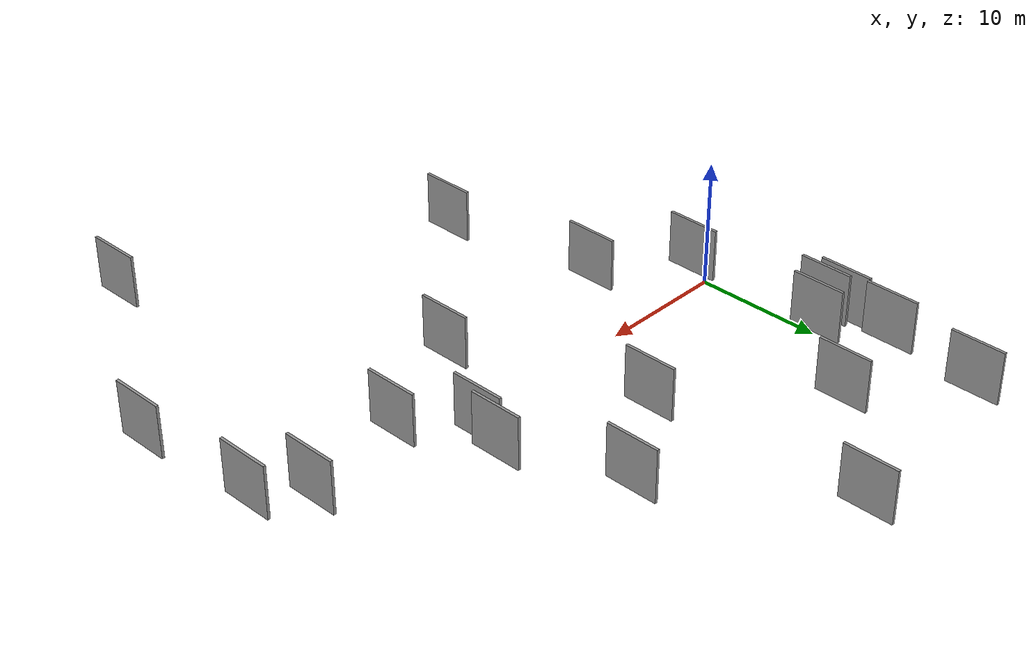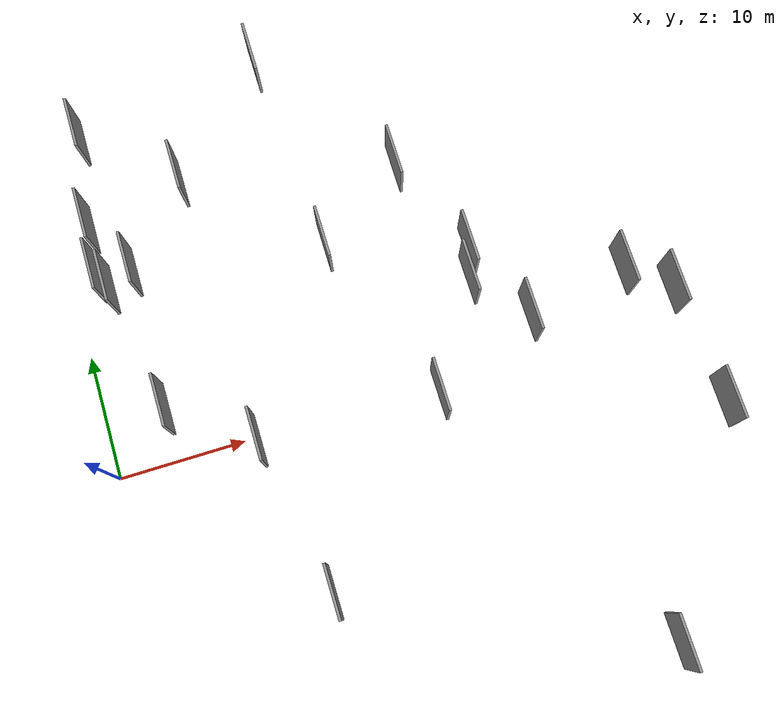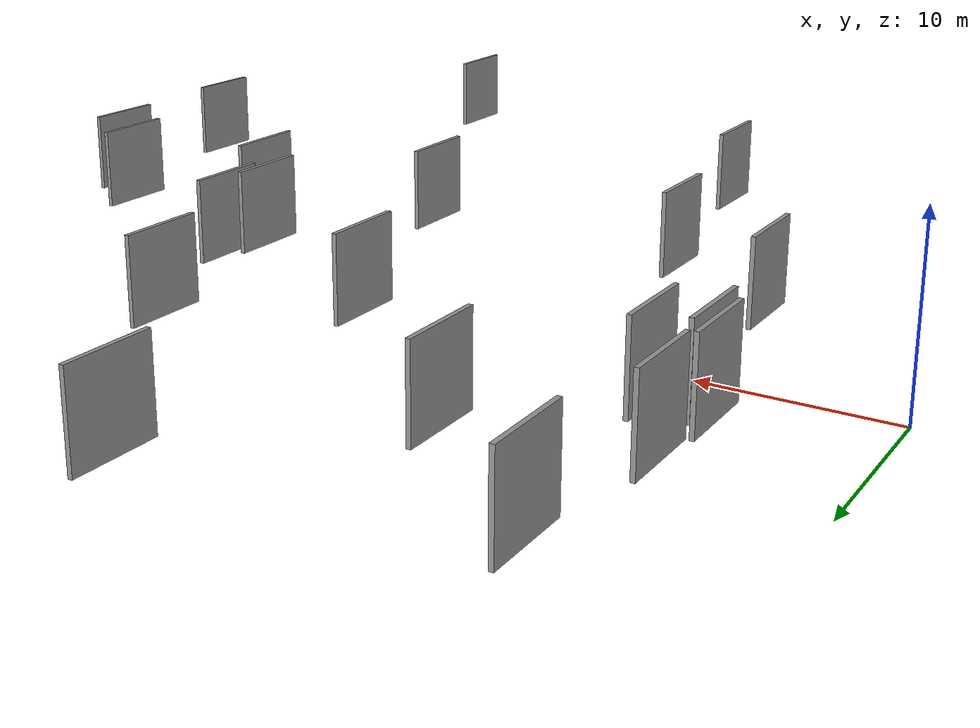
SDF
<sdf version="1.6">
 <world name="default">
  <scene>
   <sky><clouds><speed>12</speed></clouds></sky>
   <ambient>0.4 0.4 0.4 1</ambient>
   <background>0.7 0.7 0.7 1</background>
   <shadows>1</shadows>
  </scene>
  <gravity>0 0 -9.8066</gravity>
  <magnetic_field>6e-06 2.3e-05 -4.2e-05</magnetic_field>
  <physics default="0" name="default_physics" type="ode">
   <ode>
    <solver>
     <type>quick</type>
     <iters>10</iters>
     <sor>1.0</sor>
     <use_dynamic_moi_rescaling>0</use_dynamic_moi_rescaling>
    </solver>
    <constraints>
     <cfm>0</cfm>
     <erp>0.2</erp>
     <contact_max_correcting_vel>100</contact_max_correcting_vel>
     <contact_surface_layer>0.001</contact_surface_layer>
    </constraints>
   </ode>
   <max_step_size>0.004</max_step_size>
   <real_time_factor>1</real_time_factor>
   <real_time_update_rate>250</real_time_update_rate>
  </physics>
  <light name="sun" type="directional">
   <pose>0 0 10 0 0 0</pose>
   <diffuse>0.8 0.8 0.8 1</diffuse>
   <specular>0.2 0.2 0.2 1</specular>
   <attenuation>
    <range>1000</range>
    <constant>0.9</constant>
    <linear>0.01</linear>
    <quadratic>0.001</quadratic>
   </attenuation>
   <direction>-0.5 0.1 -0.9</direction>
  </light>
  <model name="grey_wall_1">
   <static>1</static>
   <pose>11.0673 20.1115 5.0 0.000000 0.000000 1.570796</pose>
   <link name="link">
    <pose>0 0 2.00 0 0 0</pose>
    <collision name="collision"><geometry><box><size>4.00 0.2 4.00</size></box></geometry></collision>
    <visual name="visual">
     <cast_shadows>0</cast_shadows>
     <geometry><box><size>4.00 0.2 4.00</size></box></geometry>
     <material>
      <script>
       <uri>model://grey_wall/materials/scripts</uri>
       <uri>model://grey_wall/materials/textures</uri>
       <name>vrc/grey_wall</name>
      </script>
     </material>
    </visual>
   </link>
  </model>
  <model name="grey_wall_2">
   <static>1</static>
   <pose>25.1580 -1.7368 5.0 0.000000 0.000000 1.570796</pose>
   <link name="link">
    <pose>0 0 2.00 0 0 0</pose>
    <collision name="collision"><geometry><box><size>4.00 0.2 4.00</size></box></geometry></collision>
    <visual name="visual">
     <cast_shadows>0</cast_shadows>
     <geometry><box><size>4.00 0.2 4.00</size></box></geometry>
     <material>
      <script>
       <uri>model://grey_wall/materials/scripts</uri>
       <uri>model://grey_wall/materials/textures</uri>
       <name>vrc/grey_wall</name>
      </script>
     </material>
    </visual>
   </link>
  </model>
  <model name="grey_wall_3">
   <static>1</static>
   <pose>3.2269 14.4257 5.0 0.000000 0.000000 1.570796</pose>
   <link name="link">
    <pose>0 0 2.00 0 0 0</pose>
    <collision name="collision"><geometry><box><size>4.00 0.2 4.00</size></box></geometry></collision>
    <visual name="visual">
     <cast_shadows>0</cast_shadows>
     <geometry><box><size>4.00 0.2 4.00</size></box></geometry>
     <material>
      <script>
       <uri>model://grey_wall/materials/scripts</uri>
       <uri>model://grey_wall/materials/textures</uri>
       <name>vrc/grey_wall</name>
      </script>
     </material>
    </visual>
   </link>
  </model>
  <model name="grey_wall_4">
   <static>1</static>
   <pose>44.9015 -8.3818 5.0 0.000000 0.000000 1.570796</pose>
   <link name="link">
    <pose>0 0 2.00 0 0 0</pose>
    <collision name="collision"><geometry><box><size>4.00 0.2 4.00</size></box></geometry></collision>
    <visual name="visual">
     <cast_shadows>0</cast_shadows>
     <geometry><box><size>4.00 0.2 4.00</size></box></geometry>
     <material>
      <script>
       <uri>model://grey_wall/materials/scripts</uri>
       <uri>model://grey_wall/materials/textures</uri>
       <name>vrc/grey_wall</name>
      </script>
     </material>
    </visual>
   </link>
  </model>
  <model name="grey_wall_5">
   <static>1</static>
   <pose>11.5011 -1.1988 5.0 0.000000 0.000000 1.570796</pose>
   <link name="link">
    <pose>0 0 2.00 0 0 0</pose>
    <collision name="collision"><geometry><box><size>4.00 0.2 4.00</size></box></geometry></collision>
    <visual name="visual">
     <cast_shadows>0</cast_shadows>
     <geometry><box><size>4.00 0.2 4.00</size></box></geometry>
     <material>
      <script>
       <uri>model://grey_wall/materials/scripts</uri>
       <uri>model://grey_wall/materials/textures</uri>
       <name>vrc/grey_wall</name>
      </script>
     </material>
    </visual>
   </link>
  </model>
  <model name="grey_wall_6">
   <static>1</static>
   <pose>41.2224 3.3503 5.0 0.000000 0.000000 1.570796</pose>
   <link name="link">
    <pose>0 0 2.00 0 0 0</pose>
    <collision name="collision"><geometry><box><size>4.00 0.2 4.00</size></box></geometry></collision>
    <visual name="visual">
     <cast_shadows>0</cast_shadows>
     <geometry><box><size>4.00 0.2 4.00</size></box></geometry>
     <material>
      <script>
       <uri>model://grey_wall/materials/scripts</uri>
       <uri>model://grey_wall/materials/textures</uri>
       <name>vrc/grey_wall</name>
      </script>
     </material>
    </visual>
   </link>
  </model>
  <model name="grey_wall_7">
   <static>1</static>
   <pose>13.7121 -13.1620 5.0 0.000000 0.000000 1.570796</pose>
   <link name="link">
    <pose>0 0 2.00 0 0 0</pose>
    <collision name="collision"><geometry><box><size>4.00 0.2 4.00</size></box></geometry></collision>
    <visual name="visual">
     <cast_shadows>0</cast_shadows>
     <geometry><box><size>4.00 0.2 4.00</size></box></geometry>
     <material>
      <script>
       <uri>model://grey_wall/materials/scripts</uri>
       <uri>model://grey_wall/materials/textures</uri>
       <name>vrc/grey_wall</name>
      </script>
     </material>
    </visual>
   </link>
  </model>
  <model name="grey_wall_8">
   <static>1</static>
   <pose>27.2254 16.4167 5.0 0.000000 0.000000 1.570796</pose>
   <link name="link">
    <pose>0 0 2.00 0 0 0</pose>
    <collision name="collision"><geometry><box><size>4.00 0.2 4.00</size></box></geometry></collision>
    <visual name="visual">
     <cast_shadows>0</cast_shadows>
     <geometry><box><size>4.00 0.2 4.00</size></box></geometry>
     <material>
      <script>
       <uri>model://grey_wall/materials/scripts</uri>
       <uri>model://grey_wall/materials/textures</uri>
       <name>vrc/grey_wall</name>
      </script>
     </material>
    </visual>
   </link>
  </model>
  <model name="grey_wall_9">
   <static>1</static>
   <pose>3.9107 13.2673 5.0 0.000000 0.000000 1.570796</pose>
   <link name="link">
    <pose>0 0 2.00 0 0 0</pose>
    <collision name="collision"><geometry><box><size>4.00 0.2 4.00</size></box></geometry></collision>
    <visual name="visual">
     <cast_shadows>0</cast_shadows>
     <geometry><box><size>4.00 0.2 4.00</size></box></geometry>
     <material>
      <script>
       <uri>model://grey_wall/materials/scripts</uri>
       <uri>model://grey_wall/materials/textures</uri>
       <name>vrc/grey_wall</name>
      </script>
     </material>
    </visual>
   </link>
  </model>
  <model name="grey_wall_10">
   <static>1</static>
   <pose>20.2489 11.7637 5.0 0.000000 0.000000 1.570796</pose>
   <link name="link">
    <pose>0 0 2.00 0 0 0</pose>
    <collision name="collision"><geometry><box><size>4.00 0.2 4.00</size></box></geometry></collision>
    <visual name="visual">
     <cast_shadows>0</cast_shadows>
     <geometry><box><size>4.00 0.2 4.00</size></box></geometry>
     <material>
      <script>
       <uri>model://grey_wall/materials/scripts</uri>
       <uri>model://grey_wall/materials/textures</uri>
       <name>vrc/grey_wall</name>
      </script>
     </material>
    </visual>
   </link>
  </model>
  <model name="grey_wall_11">
   <static>1</static>
   <pose>30.5673 8.2764 5.0 0.000000 0.000000 1.570796</pose>
   <link name="link">
    <pose>0 0 2.00 0 0 0</pose>
    <collision name="collision"><geometry><box><size>4.00 0.2 4.00</size></box></geometry></collision>
    <visual name="visual">
     <cast_shadows>0</cast_shadows>
     <geometry><box><size>4.00 0.2 4.00</size></box></geometry>
     <material>
      <script>
       <uri>model://grey_wall/materials/scripts</uri>
       <uri>model://grey_wall/materials/textures</uri>
       <name>vrc/grey_wall</name>
      </script>
     </material>
    </visual>
   </link>
  </model>
  <model name="grey_wall_12">
   <static>1</static>
   <pose>44.2252 0.8774 5.0 0.000000 0.000000 1.570796</pose>
   <link name="link">
    <pose>0 0 2.00 0 0 0</pose>
    <collision name="collision"><geometry><box><size>4.00 0.2 4.00</size></box></geometry></collision>
    <visual name="visual">
     <cast_shadows>0</cast_shadows>
     <geometry><box><size>4.00 0.2 4.00</size></box></geometry>
     <material>
      <script>
       <uri>model://grey_wall/materials/scripts</uri>
       <uri>model://grey_wall/materials/textures</uri>
       <name>vrc/grey_wall</name>
      </script>
     </material>
    </visual>
   </link>
  </model>
  <model name="grey_wall_13">
   <static>1</static>
   <pose>3.5524 18.4013 5.0 0.000000 0.000000 1.570796</pose>
   <link name="link">
    <pose>0 0 2.00 0 0 0</pose>
    <collision name="collision"><geometry><box><size>4.00 0.2 4.00</size></box></geometry></collision>
    <visual name="visual">
     <cast_shadows>0</cast_shadows>
     <geometry><box><size>4.00 0.2 4.00</size></box></geometry>
     <material>
      <script>
       <uri>model://grey_wall/materials/scripts</uri>
       <uri>model://grey_wall/materials/textures</uri>
       <name>vrc/grey_wall</name>
      </script>
     </material>
    </visual>
   </link>
  </model>
  <model name="grey_wall_14">
   <static>1</static>
   <pose>29.9410 6.0697 5.0 0.000000 0.000000 1.570796</pose>
   <link name="link">
    <pose>0 0 2.00 0 0 0</pose>
    <collision name="collision"><geometry><box><size>4.00 0.2 4.00</size></box></geometry></collision>
    <visual name="visual">
     <cast_shadows>0</cast_shadows>
     <geometry><box><size>4.00 0.2 4.00</size></box></geometry>
     <material>
      <script>
       <uri>model://grey_wall/materials/scripts</uri>
       <uri>model://grey_wall/materials/textures</uri>
       <name>vrc/grey_wall</name>
      </script>
     </material>
    </visual>
   </link>
  </model>
  <model name="grey_wall_15">
   <static>1</static>
   <pose>33.3578 1.9634 5.0 0.000000 0.000000 1.570796</pose>
   <link name="link">
    <pose>0 0 2.00 0 0 0</pose>
    <collision name="collision"><geometry><box><size>4.00 0.2 4.00</size></box></geometry></collision>
    <visual name="visual">
     <cast_shadows>0</cast_shadows>
     <geometry><box><size>4.00 0.2 4.00</size></box></geometry>
     <material>
      <script>
       <uri>model://grey_wall/materials/scripts</uri>
       <uri>model://grey_wall/materials/textures</uri>
       <name>vrc/grey_wall</name>
      </script>
     </material>
    </visual>
   </link>
  </model>
  <model name="grey_wall_16">
   <static>1</static>
   <pose>5.6290 3.1148 5.0 0.000000 0.000000 1.570796</pose>
   <link name="link">
    <pose>0 0 2.00 0 0 0</pose>
    <collision name="collision"><geometry><box><size>4.00 0.2 4.00</size></box></geometry></collision>
    <visual name="visual">
     <cast_shadows>0</cast_shadows>
     <geometry><box><size>4.00 0.2 4.00</size></box></geometry>
     <material>
      <script>
       <uri>model://grey_wall/materials/scripts</uri>
       <uri>model://grey_wall/materials/textures</uri>
       <name>vrc/grey_wall</name>
      </script>
     </material>
    </visual>
   </link>
  </model>
  <model name="grey_wall_17">
   <static>1</static>
   <pose>5.8766 14.1114 5.0 0.000000 0.000000 1.570796</pose>
   <link name="link">
    <pose>0 0 2.00 0 0 0</pose>
    <collision name="collision"><geometry><box><size>4.00 0.2 4.00</size></box></geometry></collision>
    <visual name="visual">
     <cast_shadows>0</cast_shadows>
     <geometry><box><size>4.00 0.2 4.00</size></box></geometry>
     <material>
      <script>
       <uri>model://grey_wall/materials/scripts</uri>
       <uri>model://grey_wall/materials/textures</uri>
       <name>vrc/grey_wall</name>
      </script>
     </material>
    </visual>
   </link>
  </model>
  <model name="grey_wall_18">
   <static>1</static>
   <pose>4.5217 25.6828 5.0 0.000000 0.000000 1.570796</pose>
   <link name="link">
    <pose>0 0 2.00 0 0 0</pose>
    <collision name="collision"><geometry><box><size>4.00 0.2 4.00</size></box></geometry></collision>
    <visual name="visual">
     <cast_shadows>0</cast_shadows>
     <geometry><box><size>4.00 0.2 4.00</size></box></geometry>
     <material>
      <script>
       <uri>model://grey_wall/materials/scripts</uri>
       <uri>model://grey_wall/materials/textures</uri>
       <name>vrc/grey_wall</name>
      </script>
     </material>
    </visual>
   </link>
  </model>
  <model name="grey_wall_19">
   <static>1</static>
   <pose>19.0740 27.8201 5.0 0.000000 0.000000 1.570796</pose>
   <link name="link">
    <pose>0 0 2.00 0 0 0</pose>
    <collision name="collision"><geometry><box><size>4.00 0.2 4.00</size></box></geometry></collision>
    <visual name="visual">
     <cast_shadows>0</cast_shadows>
     <geometry><box><size>4.00 0.2 4.00</size></box></geometry>
     <material>
      <script>
       <uri>model://grey_wall/materials/scripts</uri>
       <uri>model://grey_wall/materials/textures</uri>
       <name>vrc/grey_wall</name>
      </script>
     </material>
    </visual>
   </link>
  </model>
  <model name="grey_wall_20">
   <static>1</static>
   <pose>35.6254 -23.3323 5.0 0.000000 0.000000 1.570796</pose>
   <link name="link">
    <pose>0 0 2.00 0 0 0</pose>
    <collision name="collision"><geometry><box><size>4.00 0.2 4.00</size></box></geometry></collision>
    <visual name="visual">
     <cast_shadows>0</cast_shadows>
     <geometry><box><size>4.00 0.2 4.00</size></box></geometry>
     <material>
      <script>
       <uri>model://grey_wall/materials/scripts</uri>
       <uri>model://grey_wall/materials/textures</uri>
       <name>vrc/grey_wall</name>
      </script>
     </material>
    </visual>
   </link>
  </model>
 </world>
</sdf>
